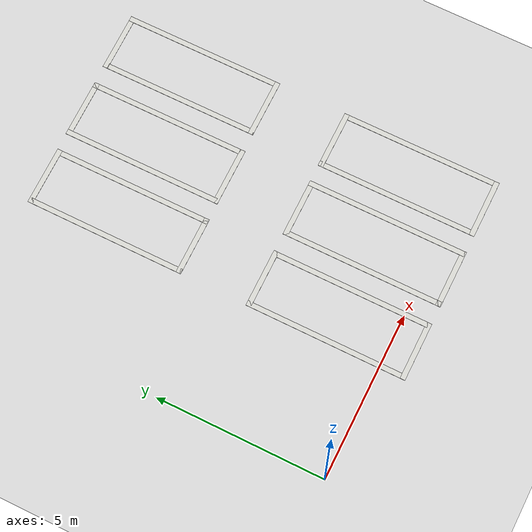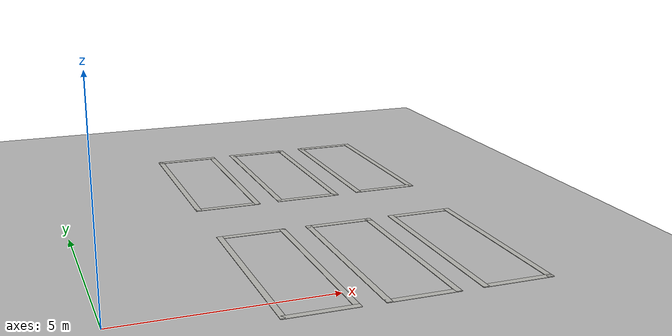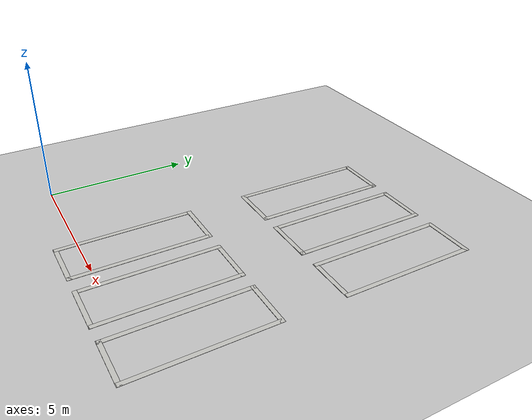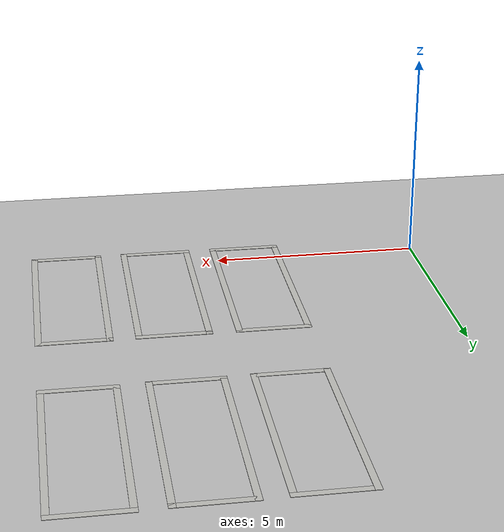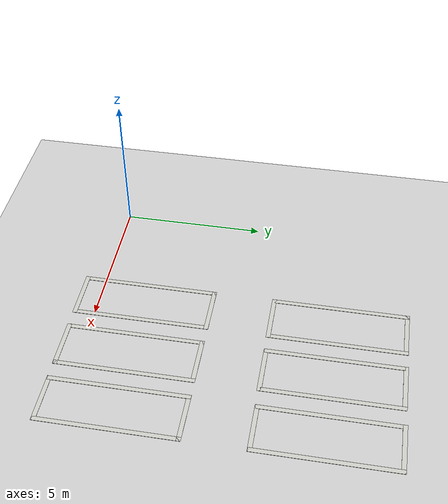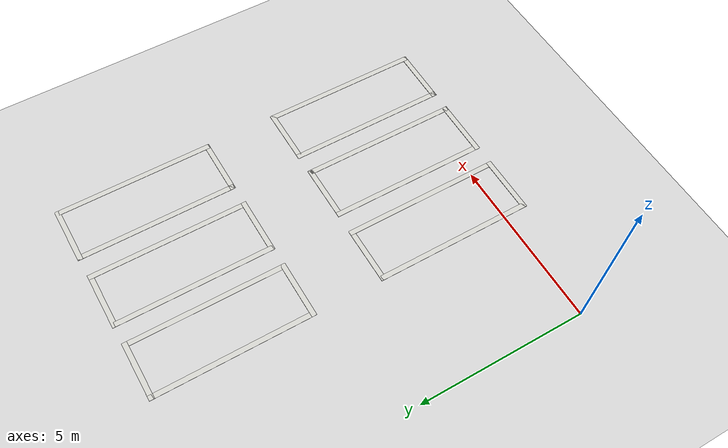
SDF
<sdf version="1.6">
 <world name="default">
  <model name="ground_plane">
   <static>1</static>
   <link name="link">
    <collision name="collision">
     <geometry><plane><normal>0 0 1</normal><size>100 100</size></plane></geometry>
     <surface>
      <contact><collide_bitmask>65535</collide_bitmask></contact>
      <friction><ode><mu>100</mu><mu2>50</mu2></ode></friction>
     </surface>
    </collision>
    <visual name="visual">
     <cast_shadows>0</cast_shadows>
     <geometry><plane><normal>0 0 1</normal><size>100 100</size></plane></geometry>
     <material>
      <script><uri>file://media/materials/scripts/gazebo.material</uri><name>Gazebo/Grey</name></script>
     </material>
    </visual>
   </link>
  </model>
  <model name="box_front_clone_1">
   <pose>4.24395 1.61651 0 0 -0 0</pose>
   <link name="Wall_3">
    <collision name="Wall_3_Collision"><geometry><box><size>0 0 0</size></box></geometry></collision>
    <visual name="Wall_3_Visual">
     <geometry><box><size>1.75 0.15 0.01</size></box></geometry>
     <material>
      <script><uri>file://media/materials/scripts/gazebo.material</uri><name>Gazebo/CeilingTiled</name></script>
      <ambient>1 1 1 1</ambient>
     </material>
     <meta><layer>0</layer></meta>
    </visual>
    <pose>0 2.31006 0 0 -0 0</pose>
   </link>
   <link name="Wall_4">
    <collision name="Wall_4_Collision"><geometry><box><size>0 0 0</size></box></geometry></collision>
    <visual name="Wall_4_Visual">
     <geometry><box><size>4.75 0.15 0.01</size></box></geometry>
     <material>
      <script><uri>file://media/materials/scripts/gazebo.material</uri><name>Gazebo/CeilingTiled</name></script>
      <ambient>1 1 1 1</ambient>
     </material>
     <meta><layer>0</layer></meta>
    </visual>
    <pose>0.8 0.010056 0 0 -0 -1.5708</pose>
   </link>
   <link name="Wall_5">
    <collision name="Wall_5_Collision">
     <geometry><box><size>0 0 0</size></box></geometry>
     <pose>0 0 1.25 0 -0 0</pose>
    </collision>
    <visual name="Wall_5_Visual">
     <geometry><box><size>1.75 0.15 0.01</size></box></geometry>
     <material>
      <script><uri>file://media/materials/scripts/gazebo.material</uri><name>Gazebo/CeilingTiled</name></script>
      <ambient>1 1 1 1</ambient>
     </material>
     <meta><layer>0</layer></meta>
    </visual>
    <pose>0 -2.31006 0 0 -0 3.14159</pose>
   </link>
   <link name="Wall_7">
    <collision name="Wall_7_Collision">
     <geometry><box><size>0 0 0</size></box></geometry>
     <pose>0 0 1.25 0 -0 0</pose>
    </collision>
    <visual name="Wall_7_Visual">
     <geometry><box><size>4.75 0.15 0.01</size></box></geometry>
     <material>
      <script><uri>file://media/materials/scripts/gazebo.material</uri><name>Gazebo/CeilingTiled</name></script>
      <ambient>1 1 1 1</ambient>
     </material>
     <meta><layer>0</layer></meta>
    </visual>
    <pose>-0.8 0.010056 0 0 -0 -1.5708</pose>
   </link>
   <static>1</static>
  </model>
  <model name="box_front_clone_2">
   <pose>6.52916 1.613 0 0 -0 0</pose>
   <link name="Wall_3">
    <collision name="Wall_3_Collision"><geometry><box><size>0 0 0</size></box></geometry></collision>
    <visual name="Wall_3_Visual">
     <geometry><box><size>1.75 0.15 0.01</size></box></geometry>
     <material>
      <script><uri>file://media/materials/scripts/gazebo.material</uri><name>Gazebo/CeilingTiled</name></script>
      <ambient>1 1 1 1</ambient>
     </material>
     <meta><layer>0</layer></meta>
    </visual>
    <pose>0 2.31006 0 0 -0 0</pose>
   </link>
   <link name="Wall_4">
    <collision name="Wall_4_Collision"><geometry><box><size>0 0 0</size></box></geometry></collision>
    <visual name="Wall_4_Visual">
     <geometry><box><size>4.75 0.15 0.01</size></box></geometry>
     <material>
      <script><uri>file://media/materials/scripts/gazebo.material</uri><name>Gazebo/CeilingTiled</name></script>
      <ambient>1 1 1 1</ambient>
     </material>
     <meta><layer>0</layer></meta>
    </visual>
    <pose>0.8 0.010056 0 0 -0 -1.5708</pose>
   </link>
   <link name="Wall_5">
    <collision name="Wall_5_Collision">
     <geometry><box><size>0 0 0</size></box></geometry>
     <pose>0 0 1.25 0 -0 0</pose>
    </collision>
    <visual name="Wall_5_Visual">
     <geometry><box><size>1.75 0.15 0.01</size></box></geometry>
     <material>
      <script><uri>file://media/materials/scripts/gazebo.material</uri><name>Gazebo/CeilingTiled</name></script>
      <ambient>1 1 1 1</ambient>
     </material>
     <meta><layer>0</layer></meta>
    </visual>
    <pose>0 -2.31006 0 0 -0 3.14159</pose>
   </link>
   <link name="Wall_7">
    <collision name="Wall_7_Collision">
     <geometry><box><size>0 0 0</size></box></geometry>
     <pose>0 0 1.25 0 -0 0</pose>
    </collision>
    <visual name="Wall_7_Visual">
     <geometry><box><size>4.75 0.15 0.01</size></box></geometry>
     <material>
      <script><uri>file://media/materials/scripts/gazebo.material</uri><name>Gazebo/CeilingTiled</name></script>
      <ambient>1 1 1 1</ambient>
     </material>
     <meta><layer>0</layer></meta>
    </visual>
    <pose>-0.8 0.010056 0 0 -0 -1.5708</pose>
   </link>
   <static>1</static>
  </model>
  <model name="box_front_clone_3">
   <pose>8.78569 1.62156 0 0 -0 0</pose>
   <link name="Wall_3">
    <collision name="Wall_3_Collision"><geometry><box><size>0 0 0</size></box></geometry></collision>
    <visual name="Wall_3_Visual">
     <geometry><box><size>1.75 0.15 0.01</size></box></geometry>
     <material>
      <script><uri>file://media/materials/scripts/gazebo.material</uri><name>Gazebo/CeilingTiled</name></script>
      <ambient>1 1 1 1</ambient>
     </material>
     <meta><layer>0</layer></meta>
    </visual>
    <pose>0 2.31006 0 0 -0 0</pose>
   </link>
   <link name="Wall_4">
    <collision name="Wall_4_Collision"><geometry><box><size>0 0 0</size></box></geometry></collision>
    <visual name="Wall_4_Visual">
     <geometry><box><size>4.75 0.15 0.01</size></box></geometry>
     <material>
      <script><uri>file://media/materials/scripts/gazebo.material</uri><name>Gazebo/CeilingTiled</name></script>
      <ambient>1 1 1 1</ambient>
     </material>
     <meta><layer>0</layer></meta>
    </visual>
    <pose>0.8 0.010056 0 0 -0 -1.5708</pose>
   </link>
   <link name="Wall_5">
    <collision name="Wall_5_Collision">
     <geometry><box><size>0 0 0</size></box></geometry>
     <pose>0 0 1.25 0 -0 0</pose>
    </collision>
    <visual name="Wall_5_Visual">
     <geometry><box><size>1.75 0.15 0.01</size></box></geometry>
     <material>
      <script><uri>file://media/materials/scripts/gazebo.material</uri><name>Gazebo/CeilingTiled</name></script>
      <ambient>1 1 1 1</ambient>
     </material>
     <meta><layer>0</layer></meta>
    </visual>
    <pose>0 -2.31006 0 0 -0 3.14159</pose>
   </link>
   <link name="Wall_7">
    <collision name="Wall_7_Collision">
     <geometry><box><size>0 0 0</size></box></geometry>
     <pose>0 0 1.25 0 -0 0</pose>
    </collision>
    <visual name="Wall_7_Visual">
     <geometry><box><size>4.75 0.15 0.01</size></box></geometry>
     <material>
      <script><uri>file://media/materials/scripts/gazebo.material</uri><name>Gazebo/CeilingTiled</name></script>
      <ambient>1 1 1 1</ambient>
     </material>
     <meta><layer>0</layer></meta>
    </visual>
    <pose>-0.8 0.010056 0 0 -0 -1.5708</pose>
   </link>
   <static>1</static>
  </model>
  <model name="box_front_clone_5">
   <pose>4.24727 8.37394 0 0 -0 0</pose>
   <link name="Wall_3">
    <collision name="Wall_3_Collision"><geometry><box><size>0 0 0</size></box></geometry></collision>
    <visual name="Wall_3_Visual">
     <geometry><box><size>1.75 0.15 0.01</size></box></geometry>
     <material>
      <script><uri>file://media/materials/scripts/gazebo.material</uri><name>Gazebo/CeilingTiled</name></script>
      <ambient>1 1 1 1</ambient>
     </material>
     <meta><layer>0</layer></meta>
    </visual>
    <pose>0 2.31006 0 0 -0 0</pose>
   </link>
   <link name="Wall_4">
    <collision name="Wall_4_Collision"><geometry><box><size>0 0 0</size></box></geometry></collision>
    <visual name="Wall_4_Visual">
     <geometry><box><size>4.75 0.15 0.01</size></box></geometry>
     <material>
      <script><uri>file://media/materials/scripts/gazebo.material</uri><name>Gazebo/CeilingTiled</name></script>
      <ambient>1 1 1 1</ambient>
     </material>
     <meta><layer>0</layer></meta>
    </visual>
    <pose>0.8 0.010056 0 0 -0 -1.5708</pose>
   </link>
   <link name="Wall_5">
    <collision name="Wall_5_Collision">
     <geometry><box><size>0 0 0</size></box></geometry>
     <pose>0 0 1.25 0 -0 0</pose>
    </collision>
    <visual name="Wall_5_Visual">
     <geometry><box><size>1.75 0.15 0.01</size></box></geometry>
     <material>
      <script><uri>file://media/materials/scripts/gazebo.material</uri><name>Gazebo/CeilingTiled</name></script>
      <ambient>1 1 1 1</ambient>
     </material>
     <meta><layer>0</layer></meta>
    </visual>
    <pose>0 -2.31006 0 0 -0 3.14159</pose>
   </link>
   <link name="Wall_7">
    <collision name="Wall_7_Collision">
     <geometry><box><size>0 0 0</size></box></geometry>
     <pose>0 0 1.25 0 -0 0</pose>
    </collision>
    <visual name="Wall_7_Visual">
     <geometry><box><size>4.75 0.15 0.01</size></box></geometry>
     <material>
      <script><uri>file://media/materials/scripts/gazebo.material</uri><name>Gazebo/CeilingTiled</name></script>
      <ambient>1 1 1 1</ambient>
     </material>
     <meta><layer>0</layer></meta>
    </visual>
    <pose>-0.8 0.010056 0 0 -0 -1.5708</pose>
   </link>
   <static>1</static>
  </model>
  <model name="box_front_clone_6">
   <pose>6.50356 8.39374 0 0 -0 0</pose>
   <link name="Wall_3">
    <collision name="Wall_3_Collision"><geometry><box><size>0 0 0</size></box></geometry></collision>
    <visual name="Wall_3_Visual">
     <geometry><box><size>1.75 0.15 0.01</size></box></geometry>
     <material>
      <script><uri>file://media/materials/scripts/gazebo.material</uri><name>Gazebo/CeilingTiled</name></script>
      <ambient>1 1 1 1</ambient>
     </material>
     <meta><layer>0</layer></meta>
    </visual>
    <pose>0 2.31006 0 0 -0 0</pose>
   </link>
   <link name="Wall_4">
    <collision name="Wall_4_Collision"><geometry><box><size>0 0 0</size></box></geometry></collision>
    <visual name="Wall_4_Visual">
     <geometry><box><size>4.75 0.15 0.01</size></box></geometry>
     <material>
      <script><uri>file://media/materials/scripts/gazebo.material</uri><name>Gazebo/CeilingTiled</name></script>
      <ambient>1 1 1 1</ambient>
     </material>
     <meta><layer>0</layer></meta>
    </visual>
    <pose>0.8 0.010056 0 0 -0 -1.5708</pose>
   </link>
   <link name="Wall_5">
    <collision name="Wall_5_Collision">
     <geometry><box><size>0 0 0</size></box></geometry>
     <pose>0 0 1.25 0 -0 0</pose>
    </collision>
    <visual name="Wall_5_Visual">
     <geometry><box><size>1.75 0.15 0.01</size></box></geometry>
     <material>
      <script><uri>file://media/materials/scripts/gazebo.material</uri><name>Gazebo/CeilingTiled</name></script>
      <ambient>1 1 1 1</ambient>
     </material>
     <meta><layer>0</layer></meta>
    </visual>
    <pose>0 -2.31006 0 0 -0 3.14159</pose>
   </link>
   <link name="Wall_7">
    <collision name="Wall_7_Collision">
     <geometry><box><size>0 0 0</size></box></geometry>
     <pose>0 0 1.25 0 -0 0</pose>
    </collision>
    <visual name="Wall_7_Visual">
     <geometry><box><size>4.75 0.15 0.01</size></box></geometry>
     <material>
      <script><uri>file://media/materials/scripts/gazebo.material</uri><name>Gazebo/CeilingTiled</name></script>
      <ambient>1 1 1 1</ambient>
     </material>
     <meta><layer>0</layer></meta>
    </visual>
    <pose>-0.8 0.010056 0 0 -0 -1.5708</pose>
   </link>
   <static>1</static>
  </model>
  <model name="box_front_clone_7">
   <pose>8.79138 8.42824 0 0 -0 0</pose>
   <link name="Wall_3">
    <collision name="Wall_3_Collision"><geometry><box><size>0 0 0</size></box></geometry></collision>
    <visual name="Wall_3_Visual">
     <geometry><box><size>1.75 0.15 0.01</size></box></geometry>
     <material>
      <script><uri>file://media/materials/scripts/gazebo.material</uri><name>Gazebo/CeilingTiled</name></script>
      <ambient>1 1 1 1</ambient>
     </material>
     <meta><layer>0</layer></meta>
    </visual>
    <pose>0 2.31006 0 0 -0 0</pose>
   </link>
   <link name="Wall_4">
    <collision name="Wall_4_Collision"><geometry><box><size>0 0 0</size></box></geometry></collision>
    <visual name="Wall_4_Visual">
     <geometry><box><size>4.75 0.15 0.01</size></box></geometry>
     <material>
      <script><uri>file://media/materials/scripts/gazebo.material</uri><name>Gazebo/CeilingTiled</name></script>
      <ambient>1 1 1 1</ambient>
     </material>
     <meta><layer>0</layer></meta>
    </visual>
    <pose>0.8 0.010056 0 0 -0 -1.5708</pose>
   </link>
   <link name="Wall_5">
    <collision name="Wall_5_Collision">
     <geometry><box><size>0 0 0</size></box></geometry>
     <pose>0 0 1.25 0 -0 0</pose>
    </collision>
    <visual name="Wall_5_Visual">
     <geometry><box><size>1.75 0.15 0.01</size></box></geometry>
     <material>
      <script><uri>file://media/materials/scripts/gazebo.material</uri><name>Gazebo/CeilingTiled</name></script>
      <ambient>1 1 1 1</ambient>
     </material>
     <meta><layer>0</layer></meta>
    </visual>
    <pose>0 -2.31006 0 0 -0 3.14159</pose>
   </link>
   <link name="Wall_7">
    <collision name="Wall_7_Collision">
     <geometry><box><size>0 0 0</size></box></geometry>
     <pose>0 0 1.25 0 -0 0</pose>
    </collision>
    <visual name="Wall_7_Visual">
     <geometry><box><size>4.75 0.15 0.01</size></box></geometry>
     <material>
      <script><uri>file://media/materials/scripts/gazebo.material</uri><name>Gazebo/CeilingTiled</name></script>
      <ambient>1 1 1 1</ambient>
     </material>
     <meta><layer>0</layer></meta>
    </visual>
    <pose>-0.8 0.010056 0 0 -0 -1.5708</pose>
   </link>
   <static>1</static>
  </model>
 </world>
</sdf>
